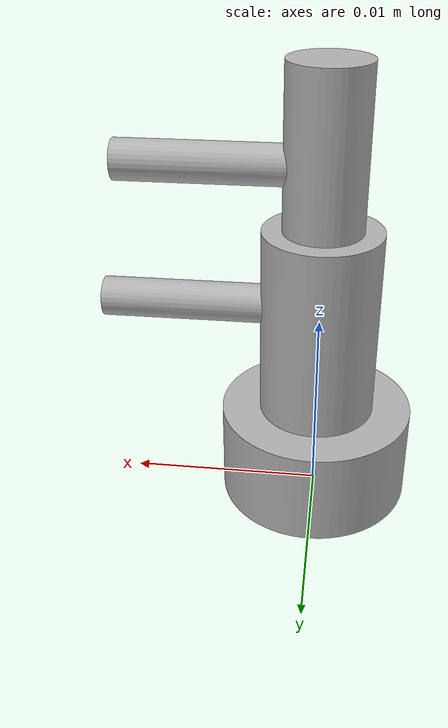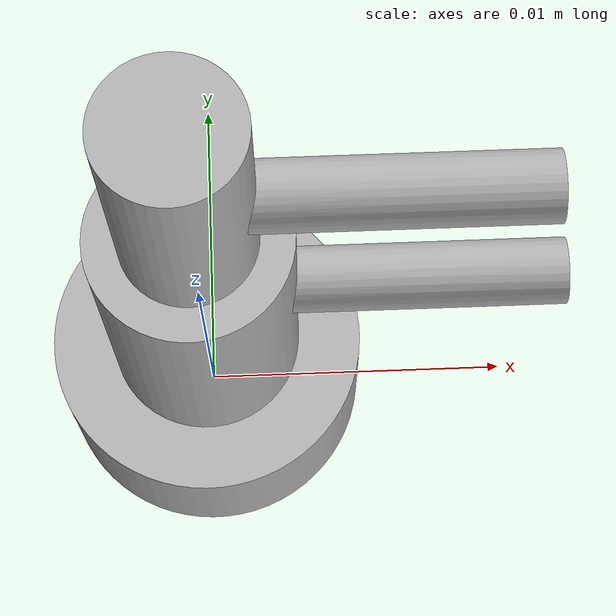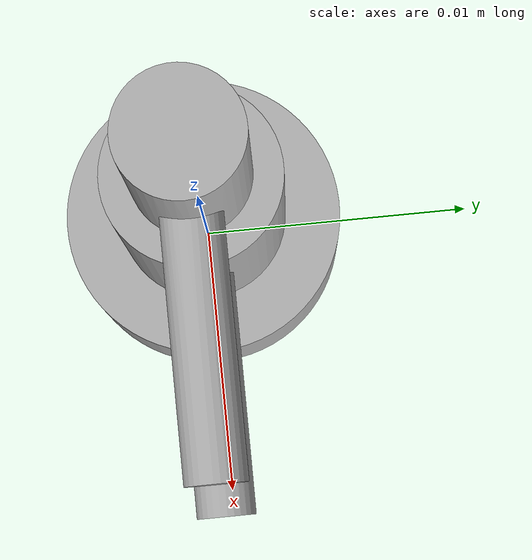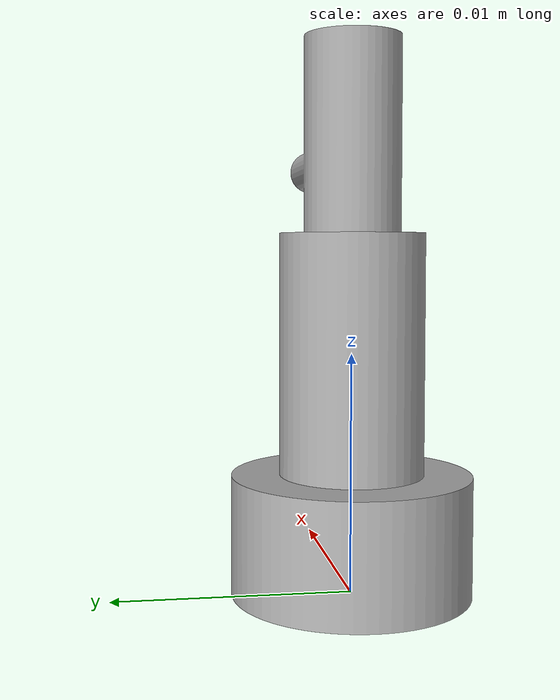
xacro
<?xml version="1.0"?>
<robot name="body" xmlns:xacro="http://www.ros.org/wiki/xacro">

  <xacro:include filename="$(find body_description)/urdf/materials.xacro" />
  <xacro:include filename="$(find body_description)/urdf/body.trans" />
  <xacro:include filename="$(find body_description)/urdf/body.gazebo" />
  <link name="base_link">
    <inertial>
      <origin xyz="2.261304950895171e-17 2.261304950895171e-17 0.06350000000000001" rpy="0 0 0" />
      <mass value="50.516200611270555" />
      <inertia ixx="0.271592" iyy="0.271592" izz="0.407388" ixy="0.0" iyz="0.0" ixz="0.0" />
    </inertial>
    <visual>
      <origin xyz="0 0 0" rpy="0 0 0" />
      <geometry>
        <mesh filename="package://body_description/meshes/base_link.stl" scale="0.001 0.001 0.001" />
      </geometry>
      <material name="silver" />
    </visual>
    <collision>
      <origin xyz="0 0 0" rpy="0 0 0" />
      <geometry>
        <mesh filename="package://body_description/meshes/base_link.stl" scale="0.001 0.001 0.001" />
      </geometry>
    </collision>
  </link>

  <link name="Component2_1">
    <inertial>
      <origin xyz="0.014540412678309876 -5.44395710305302e-09 0.1289220199614215" rpy="0 0 0" />
      <mass value="39.62177815882108" />
      <inertia ixx="0.251032" iyy="0.355554" izz="0.211171" ixy="0.0" iyz="-0.0" ixz="-0.012392" />
    </inertial>
    <visual>
      <origin xyz="-0.0 -0.0 -0.127" rpy="0 0 0" />
      <geometry>
        <mesh filename="package://body_description/meshes/Component2_1.stl" scale="0.001 0.001 0.001" />
      </geometry>
      <material name="silver" />
    </visual>
    <collision>
      <origin xyz="-0.0 -0.0 -0.127" rpy="0 0 0" />
      <geometry>
        <mesh filename="package://body_description/meshes/Component2_1.stl" scale="0.001 0.001 0.001" />
      </geometry>
    </collision>
  </link>

  <link name="Component3_1">
    <inertial>
      <origin xyz="0.03051009937539322 -1.2074875850487595e-08 0.09736843104636222" rpy="0 0 0" />
      <mass value="16.19129956233666" />
      <inertia ixx="0.055046" iyy="0.125721" izz="0.088422" ixy="0.0" iyz="-0.0" ixz="0.008295" />
    </inertial>
    <visual>
      <origin xyz="-0.0 -0.0 -0.381" rpy="0 0 0" />
      <geometry>
        <mesh filename="package://body_description/meshes/Component3_1.stl" scale="0.001 0.001 0.001" />
      </geometry>
      <material name="silver" />
    </visual>
    <collision>
      <origin xyz="-0.0 -0.0 -0.381" rpy="0 0 0" />
      <geometry>
        <mesh filename="package://body_description/meshes/Component3_1.stl" scale="0.001 0.001 0.001" />
      </geometry>
    </collision>
  </link>

  <joint name="Rev1" type="continuous">
    <origin xyz="0.0 0.0 0.127" rpy="0 0 0" />
    <parent link="base_link" />
    <child link="Component2_1" />
    <axis xyz="0.0 0.0 1.0" />
  </joint>

  <joint name="Rev2" type="continuous">
    <origin xyz="0.0 0.0 0.254" rpy="0 0 0" />
    <parent link="Component2_1" />
    <child link="Component3_1" />
    <axis xyz="0.0 0.0 1.0" />
  </joint>

  <gazebo>
    <plugin name="gazebo_ros_control" filename="libgazebo_ros_control.so"></plugin>
  </gazebo>
</robot>

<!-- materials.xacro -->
<robot name="body" xmlns:xacro="http://www.ros.org/wiki/xacro" >

<material name="silver">
  <color rgba="0.700 0.700 0.700 1.000"/>
</material>

</robot>

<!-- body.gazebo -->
<robot name="body" xmlns:xacro="http://www.ros.org/wiki/xacro" >

<xacro:property name="body_color" value="Gazebo/Silver" />

<gazebo>
  <plugin name="control" filename="libgazebo_ros_control.so"/>
</gazebo>
<gazebo reference="base_link">
  <material>${body_color}</material>
  <mu1>0.2</mu1>
  <mu2>0.2</mu2>
  <selfCollide>true</selfCollide>
  <gravity>true</gravity>
</gazebo>

<gazebo reference="Component2_1">
  <material>${body_color}</material>
  <mu1>0.2</mu1>
  <mu2>0.2</mu2>
  <selfCollide>true</selfCollide>
</gazebo>

<gazebo reference="Component3_1">
  <material>${body_color}</material>
  <mu1>0.2</mu1>
  <mu2>0.2</mu2>
  <selfCollide>true</selfCollide>
</gazebo>

</robot>
